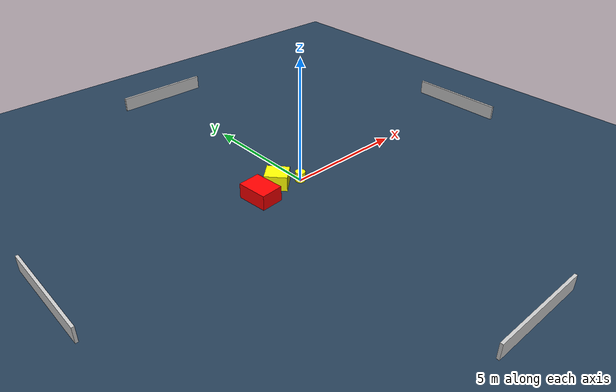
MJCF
<?xml version="1.0" ?>
<mujoco model="generated_environment">
  <option timestep="0.01" integrator="RK4" cone="elliptic"/>
  <default>
    <geom density="1"/>
  </default>
  <asset>
    <texture builtin="gradient" height="3072" name="skybox" rgb1="0.3 0.5 0.7" rgb2="0 0 0" type="skybox" width="512"/>
    <texture builtin="checker" height="300" name="groundplane" rgb1="0.2 0.3 0.4" rgb2="0.1 0.2 0.3" type="2d" width="300"/>
    <material name="groundplane" reflectance="0.2" texrepeat="5 5" texture="groundplane"/>
  </asset>
  <worldbody>
    <light dir="0 0 -1" directional="true" pos="0 0 1.5"/>
    <geom condim="3" friction="0.5 0.005 0.001" material="groundplane" name="floor" pos="0 0 0" size="0 0 0.05" type="plane"/>
    <body name="walls">
      <geom name="wall_1" condim="4" pos="-10.0 0.0 0.3" rgba="0.800000011920929 0.800000011920929 0.800000011920929 1.0" size="0.05 2.0 0.3" type="box"/>
      <geom name="wall_2" condim="4" pos="10.0 0.0 0.3" rgba="0.800000011920929 0.800000011920929 0.800000011920929 1.0" size="0.05 2.0 0.3" type="box"/>
      <geom name="wall_3" condim="4" pos="0.0 -10.0 0.3" rgba="0.800000011920929 0.800000011920929 0.800000011920929 1.0" size="2.0 0.05 0.3" type="box"/>
      <geom name="wall_4" condim="4" pos="0.0 10.0 0.3" rgba="0.800000011920929 0.800000011920929 0.800000011920929 1.0" size="2.0 0.05 0.3" type="box"/>
    </body>
    <body name="robot">
      <joint name="joint_x" type="slide" pos="0 0 0" axis="1 0 0"/>
      <joint name="joint_y" type="slide" pos="0 0 0" axis="0 1 0"/>
      <geom name="robot" type="cylinder" pos="0.0 0.0 0.2" size="0.2 0.2 0.0" mass="5.0" friction="1.0 0.005 0.0001" condim="4" rgba="1.0 1.0 0.0 1.0"/>
    </body>
    <body name="obstacle_1_movable">
      <geom name="obstacle_1_movable" condim="4" pos="-0.8724162485449145 0.3515809911687813 0.3" euler="0 0 41.67487996064974" friction="0.0 0.005 0.001" rgba="1.0 1.0 0.0 1.0" size="0.40596617673390123 0.4451818373933226 0.3" type="box" mass="0.1"/>
      <joint type="free"/>
    </body>
    <body name="obstacle_2_static">
      <geom name="obstacle_2_static" condim="4" pos="-1.9251848682794834 0.038019470711868626 0.3" euler="0 0 95.06526039757055" friction="0.0 0.005 0.001" rgba="1.0 0.0 0.0 1.0" size="0.6197480561676159 0.4540070703489393 0.3" type="box"/>
    </body>
  </worldbody>
  <actuator>
    <motor name="actuator_x" joint="joint_x" gear="1" ctrlrange="-1 1"/>
    <motor name="actuator_y" joint="joint_y" gear="1" ctrlrange="-1 1"/>
  </actuator>
</mujoco>
